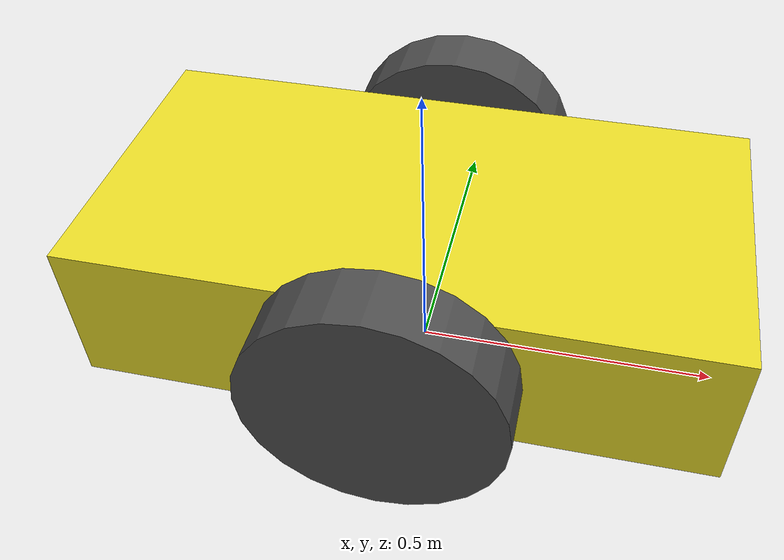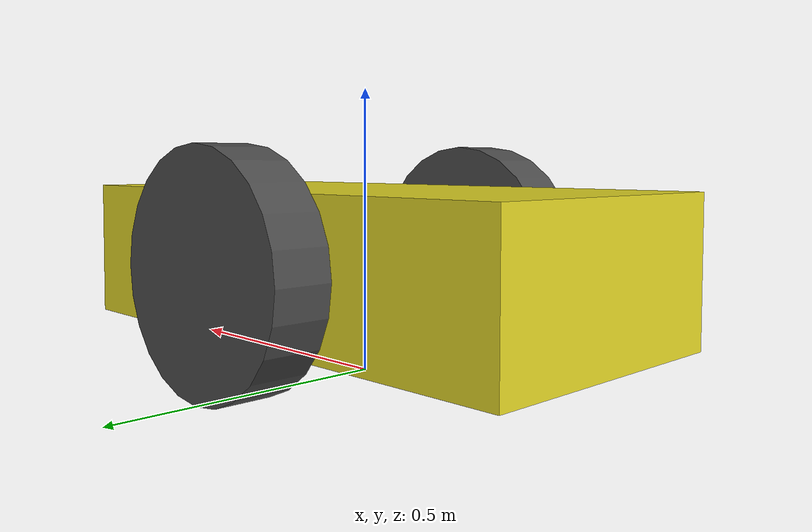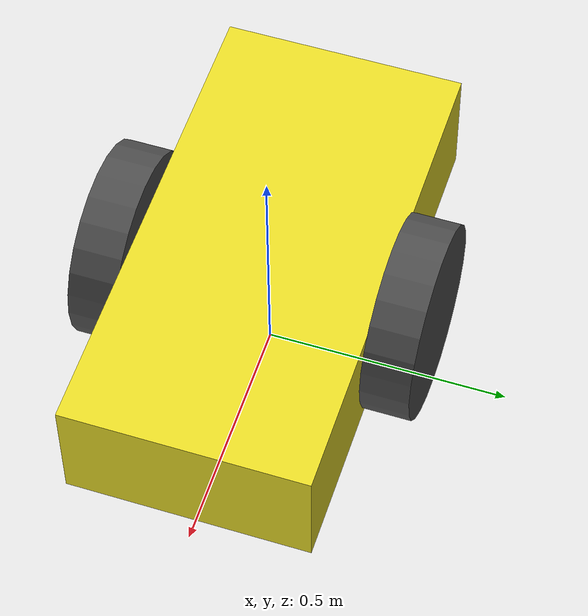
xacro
<?xml version="1.0"?>
<robot name="lasmile" xmlns:xacro="http://www.ros.org/wiki/xacro">

  <!-- Included URDF/XACRO Files -->
  <xacro:include filename="$(find lasmile_description)/urdf/materials.xacro" />
  <xacro:include filename="$(find lasmile_description)/urdf/wheel.xacro" />

  <!-- PROPERTY LIST -->
  <!--All units in m-kg-s-radians unit system -->
  <property name="M_PI" value="3.1415926535897931" />

  <!-- Main Body-base -->
  <property name="base_x_size" value="1.0" />
  <property name="base_y_size" value="0.5" />
  <property name="base_z_size" value="0.25" />
  <property name="base_mass" value="35" /> <!-- in kg-->

    <!--Inertial macros for the box and cylinder. Units are kg*m^2-->
  <macro name="box_inertia" params="m x y z">
    <inertia  ixx="${m*(y*y+z*z)/12}" ixy = "0" ixz = "0"
              iyy="${m*(x*x+z*z)/12}" iyz = "0"
              izz="${m*(x*x+z*z)/12}" />
  </macro>

  <!-- BASE-FOOTPRINT -->
  <!-- base_footprint is a fictitious link(frame) that is on the ground right below base_link origin -->
  <link name="base_footprint">
    <inertial>
      <mass value="0.0001" />
      <origin xyz="0 0 0" />
      <inertia ixx="0.0001" ixy="0.0" ixz="0.0"
          iyy="0.0001" iyz="0.0"
          izz="0.0001" />
    </inertial>
    <visual>
        <origin xyz="0 0 0" rpy="0 0 0" />
        <geometry>
            <box size="0.001 0.001 0.001" />
        </geometry>
    </visual>
  </link>

  <gazebo reference="base_footprint">
    <turnGravityOff>false</turnGravityOff>
  </gazebo>

  <joint name="base_footprint_joint" type="fixed">
  <origin xyz="0 0 ${wheel_radius - base_z_origin_to_wheel_origin}" rpy="0 0 0" />
    <parent link="base_footprint"/>
    <child link="base_link" />
  </joint>

  <!-- BASE-LINK -->
  <!--Actual body/chassis of the robot-->
  <link name="base_link">
    <inertial>
      <mass value="${base_mass}" />
      <origin xyz="0 0 0" />
      <!--The 3x3 rotational inertia matrix. -->
      <box_inertia  m="${base_mass}" x="${base_x_size}" y="${base_y_size}" z="${base_z_size}"/>
    </inertial>
    <visual>
      <origin xyz="0 0 0" rpy="0 0 0" />
      <geometry>
        <box size="1 0.5 0.25"/>
      </geometry>
      <material name="Yellow" />
    </visual>
    <collision>
      <origin xyz="0 0 0" rpy="0 0 0 " />
      <geometry>
        <box size="1 0.5 0.25"/>
      </geometry>
    </collision>
  </link>
  <gazebo reference="base_link">
    <material>Gazebo/Yellow</material>
    <turnGravityOff>false</turnGravityOff>
  </gazebo>

  <!-- WHEELs -->
  <wheel  lr="right" parent="base_link" translateX="0" translateY="-1" flipY="-1"/>
  <wheel  lr="left" parent="base_link" translateX="0" translateY="1" flipY="-1"/>

  <gazebo>
    <plugin name="diff_drive_controller" filename="libgazebo_ros_diff_drive.so">
      <legacyMode>false</legacyMode>
      <alwaysOn>true</alwaysOn>
      <updateRate>10.0</updateRate>
      <leftJoint>left_wheel_joint</leftJoint>
      <rightJoint>right_wheel_joint</rightJoint>
      <wheelSeparation>${base_y_size}</wheelSeparation>
      <wheelDiameter>${2*wheel_radius}</wheelDiameter>
      <torque>35</torque>
      <broadcastTF>1</broadcastTF>
      <odometryFrame>map</odometryFrame>
      <commandTopic>cmd_vel</commandTopic>
      <odometryTopic>odom</odometryTopic>
      <robotBaseFrame>base_footprint</robotBaseFrame>
    </plugin>
    <plugin name="gazebo_ros_control" filename="libgazebo_ros_control.so" />
  </gazebo>

</robot>

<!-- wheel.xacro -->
<robot name="wheel" xmlns:xacro="http://www.ros.org/wiki/xacro">

  <!-- Wheels -->
  <property name="wheel_radius" value="0.2" />
  <property name="wheel_height" value="0.1" />
  <property name="wheel_mass" value="2.5" /> <!-- in kg-->

  <property name="base_x_origin_to_wheel_origin" value="0.25" />
  <property name="base_y_origin_to_wheel_origin" value="0.3" />
  <property name="base_z_origin_to_wheel_origin" value="0.0" />

  <macro name="cylinder_inertia" params="m r h">
    <inertia  ixx="${m*(3*r*r+h*h)/12}" ixy = "0" ixz = "0"
              iyy="${m*(3*r*r+h*h)/12}" iyz = "0"
              izz="${m*r*r/2}" />
  </macro>

  <xacro:macro name="wheel" params="lr parent translateX translateY flipY"> <!-- lr: left, right -->
    <link name="${lr}_wheel">
      <visual>
        <origin xyz="0 0 0" rpy="${flipY*M_PI/2} 0 0" />
        <geometry>
          <cylinder length="${wheel_height}" radius="${wheel_radius}" />
        </geometry>
        <material name="DarkGray" />
      </visual>

      <collision>
        <origin xyz="0 0 0" rpy="${flipY*M_PI/2} 0 0" />
        <geometry>
          <cylinder length="${wheel_height}" radius="${wheel_radius}" />
        </geometry>
      </collision>
      <inertial>
        <mass value="${wheel_mass}" />
        <origin xyz="0 0 0" />
        <cylinder_inertia  m="${wheel_mass}" r="${wheel_radius}" h="${wheel_height}" />
      </inertial>
    </link>

      <gazebo reference="${lr}_wheel">
      <mu1 value="1.0"/>
      <mu2 value="1.0"/>
      <kp  value="10000000.0" />
      <kd  value="1.0" />
      <fdir1 value="1 0 0"/>
      <material>Gazebo/Grey</material>
      <turnGravityOff>false</turnGravityOff>
    </gazebo>

    <joint name="${lr}_wheel_joint" type="continuous">
      <parent link="${parent}"/>
      <child link="${lr}_wheel"/>
      <origin xyz="${translateX * base_x_origin_to_wheel_origin} ${translateY * base_y_origin_to_wheel_origin} ${base_z_origin_to_wheel_origin}" rpy="0 0 0" />
      <axis xyz="0 1 0" rpy="0 0 0" />
      <limit effort="100" velocity="100"/>
      <joint_properties damping="0.0" friction="0.0"/>
    </joint>

     <!-- Transmission is important to link the joints and the controller -->
    <transmission name="${lr}_wheel_joint_trans">
    <type>transmission_interface/SimpleTransmission</type>
    <joint name="${lr}_wheel_joint">
	<hardwareInterface>EffortJointInterface</hardwareInterface>
    </joint>
    <actuator name="${lr}_wheel_joint_motor">
        <hardwareInterface>EffortJointInterface</hardwareInterface>
        <mechanicalReduction>1</mechanicalReduction>
      </actuator>
    </transmission>

  </xacro:macro>
</robot>
